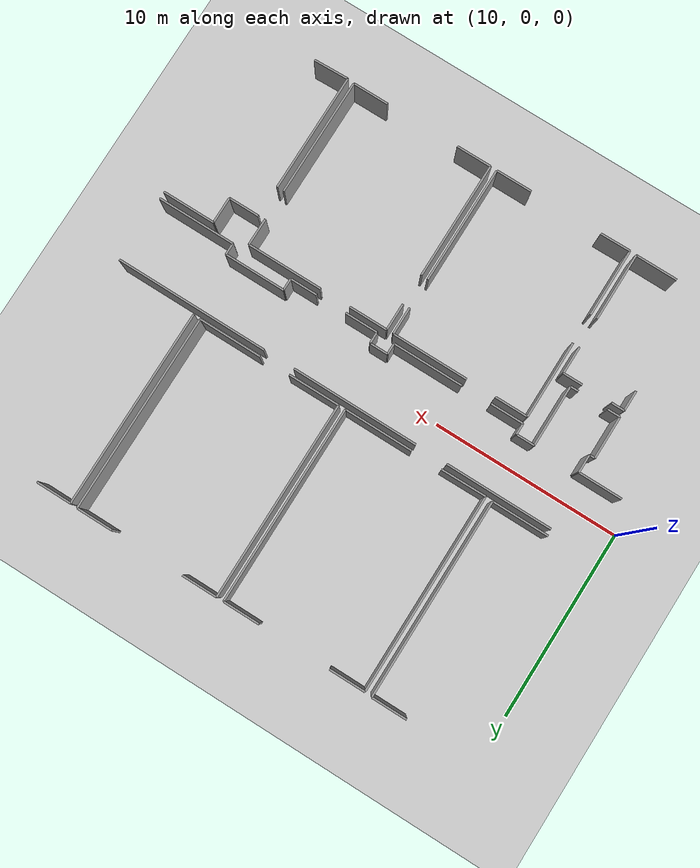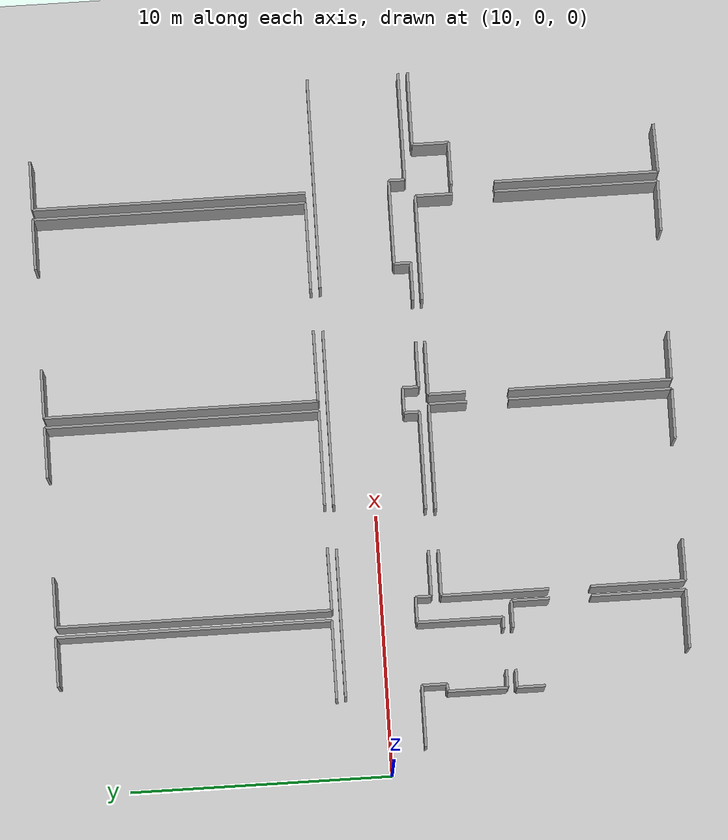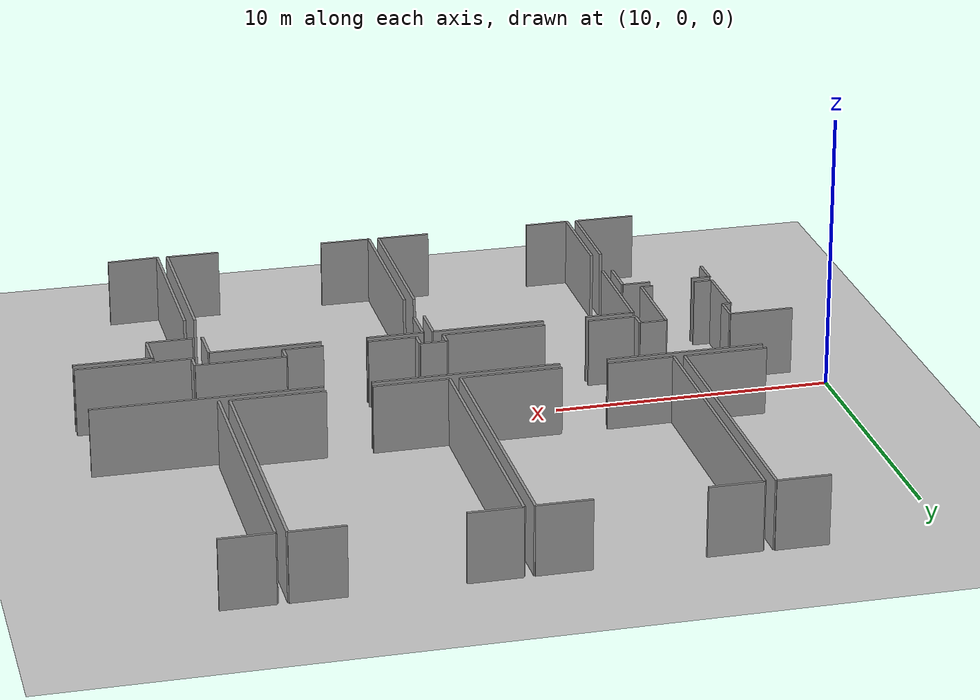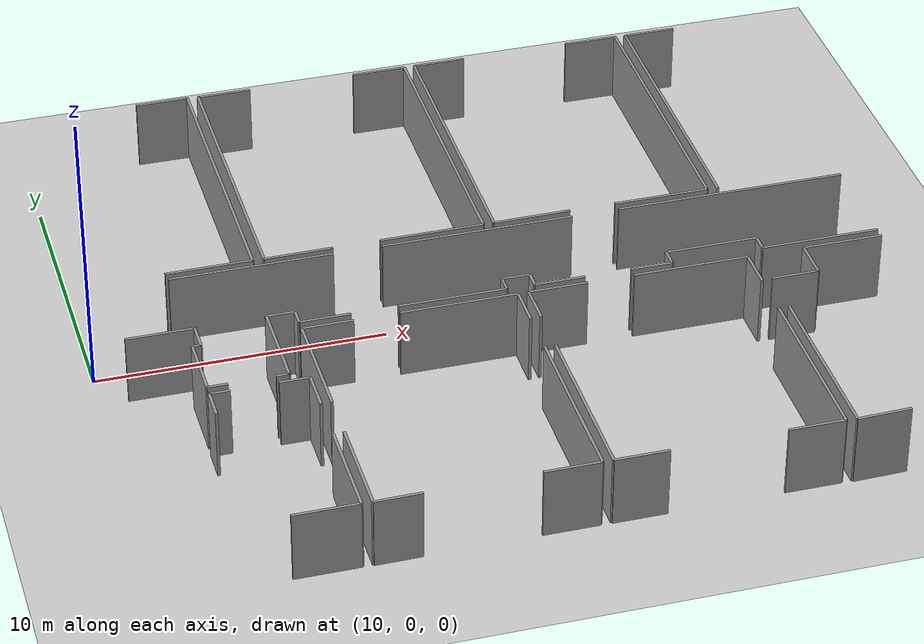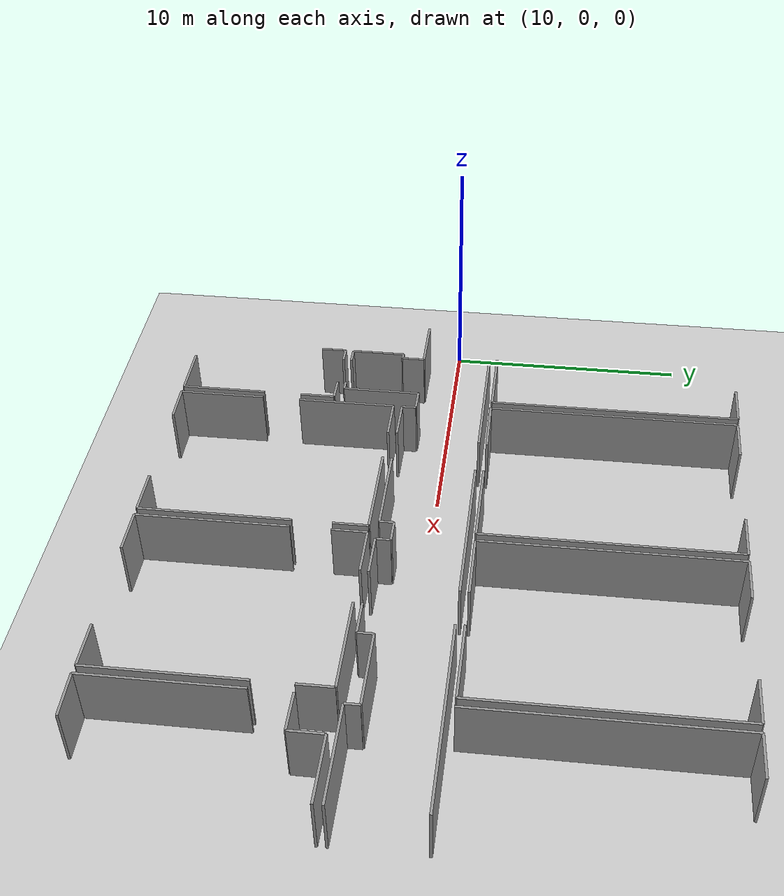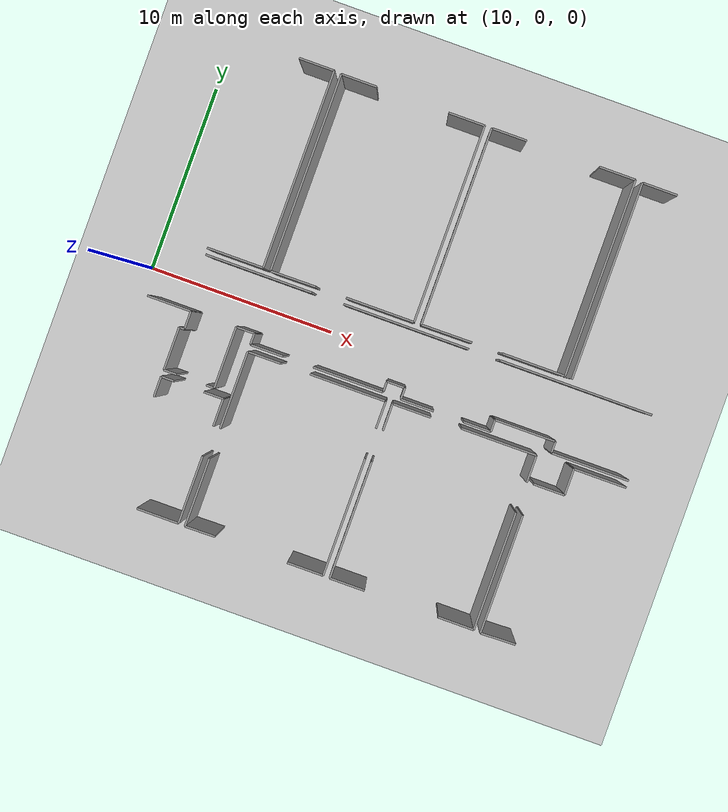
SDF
<sdf version="1.6">
 <world name="default">
  <model name="ground_plane">
   <static>1</static>
   <link name="link">
    <collision name="collision">
     <geometry><plane><normal>0 0 1</normal><size>100 100</size></plane></geometry>
     <surface><friction><ode><mu>100</mu><mu2>50</mu2></ode></friction></surface>
    </collision>
    <visual name="visual">
     <cast_shadows>0</cast_shadows>
     <geometry><plane><normal>0 0 1</normal><size>100 100</size></plane></geometry>
     <material>
      <script><uri>file://media/materials/scripts/gazebo.material</uri><name>Gazebo/Grey</name></script>
     </material>
    </visual>
   </link>
  </model>
  <model name="0510034692_Layout1">
   <static>1</static>
   <link name="Wall_224">
    <collision name="Wall_224_Collision">
     <geometry><box><size>1.8631144452 0.1 2.5</size></box></geometry>
     <pose>0.931557222598 0 1.25 0 0 0</pose>
    </collision>
    <visual name="Wall_224_Visual">
     <pose>0.931557222598 0 1.25 0 0 0</pose>
     <geometry><box><size>1.8631144452 0.1 2.5</size></box></geometry>
     <material>
      <script><uri>file://media/materials/scripts/gazebo.material</uri><name>Gazebo/Grey</name></script>
      <ambient>1 1 1 1</ambient>
     </material>
    </visual>
    <pose>70.4416633147 -0.0 0 0 0 0.0</pose>
   </link>
   <link name="Wall_225">
    <collision name="Wall_225_Collision">
     <geometry><box><size>10.489551307 0.1 2.5</size></box></geometry>
     <pose>5.24477565351 0 1.25 0 0 0</pose>
    </collision>
    <visual name="Wall_225_Visual">
     <pose>5.24477565351 0 1.25 0 0 0</pose>
     <geometry><box><size>10.489551307 0.1 2.5</size></box></geometry>
     <material>
      <script><uri>file://media/materials/scripts/gazebo.material</uri><name>Gazebo/Grey</name></script>
      <ambient>1 1 1 1</ambient>
     </material>
    </visual>
    <pose>72.3047777599 -0.0 0 0 0 -1.57079632679</pose>
   </link>
   <link name="Wall_226">
    <collision name="Wall_226_Collision">
     <geometry><box><size>2.98608405903 0.1 2.5</size></box></geometry>
     <pose>1.49304202952 0 1.25 0 0 0</pose>
    </collision>
    <visual name="Wall_226_Visual">
     <pose>1.49304202952 0 1.25 0 0 0</pose>
     <geometry><box><size>2.98608405903 0.1 2.5</size></box></geometry>
     <material>
      <script><uri>file://media/materials/scripts/gazebo.material</uri><name>Gazebo/Grey</name></script>
      <ambient>1 1 1 1</ambient>
     </material>
    </visual>
    <pose>72.3047777599 -10.489551307 0 0 0 3.14159265359</pose>
   </link>
   <link name="Wall_228">
    <collision name="Wall_228_Collision">
     <geometry><box><size>10.4710254806 0.1 2.5</size></box></geometry>
     <pose>5.23551274031 0 1.25 0 0 0</pose>
    </collision>
    <visual name="Wall_228_Visual">
     <pose>5.23551274031 0 1.25 0 0 0</pose>
     <geometry><box><size>10.4710254806 0.1 2.5</size></box></geometry>
     <material>
      <script><uri>file://media/materials/scripts/gazebo.material</uri><name>Gazebo/Grey</name></script>
      <ambient>1 1 1 1</ambient>
     </material>
    </visual>
    <pose>72.6935663358 -10.5116300316 0 0 0 1.57079632679</pose>
   </link>
   <link name="Wall_229">
    <collision name="Wall_229_Collision">
     <geometry><box><size>1.897882092 0.1 2.5</size></box></geometry>
     <pose>0.948941045999 0 1.25 0 0 0</pose>
    </collision>
    <visual name="Wall_229_Visual">
     <pose>0.948941045999 0 1.25 0 0 0</pose>
     <geometry><box><size>1.897882092 0.1 2.5</size></box></geometry>
     <material>
      <script><uri>file://media/materials/scripts/gazebo.material</uri><name>Gazebo/Grey</name></script>
      <ambient>1 1 1 1</ambient>
     </material>
    </visual>
    <pose>72.6935663358 -0.0406045510088 0 0 0 0.0</pose>
   </link>
   <link name="Wall_230">
    <collision name="Wall_230_Collision">
     <geometry><box><size>1.91983392739 0.1 2.5</size></box></geometry>
     <pose>0.959916963693 0 1.25 0 0 0</pose>
    </collision>
    <visual name="Wall_230_Visual">
     <pose>0.959916963693 0 1.25 0 0 0</pose>
     <geometry><box><size>1.91983392739 0.1 2.5</size></box></geometry>
     <material>
      <script><uri>file://media/materials/scripts/gazebo.material</uri><name>Gazebo/Grey</name></script>
      <ambient>1 1 1 1</ambient>
     </material>
    </visual>
    <pose>78.4091644472 -0.0406045510088 0 0 0 0.0</pose>
   </link>
   <link name="Wall_231">
    <collision name="Wall_231_Collision">
     <geometry><box><size>10.448946756 0.1 2.5</size></box></geometry>
     <pose>5.22447337801 0 1.25 0 0 0</pose>
    </collision>
    <visual name="Wall_231_Visual">
     <pose>5.22447337801 0 1.25 0 0 0</pose>
     <geometry><box><size>10.448946756 0.1 2.5</size></box></geometry>
     <material>
      <script><uri>file://media/materials/scripts/gazebo.material</uri><name>Gazebo/Grey</name></script>
      <ambient>1 1 1 1</ambient>
     </material>
    </visual>
    <pose>80.3289983745 -0.0406045510088 0 0 0 -1.57079632679</pose>
   </link>
   <link name="Wall_232">
    <collision name="Wall_232_Collision">
     <geometry><box><size>3.61900749788 0.1 2.5</size></box></geometry>
     <pose>1.80950374894 0 1.25 0 0 0</pose>
    </collision>
    <visual name="Wall_232_Visual">
     <pose>1.80950374894 0 1.25 0 0 0</pose>
     <geometry><box><size>3.61900749788 0.1 2.5</size></box></geometry>
     <material>
      <script><uri>file://media/materials/scripts/gazebo.material</uri><name>Gazebo/Grey</name></script>
      <ambient>1 1 1 1</ambient>
     </material>
    </visual>
    <pose>80.3289983745 -10.489551307 0 0 0 3.14159265359</pose>
   </link>
   <link name="Wall_233">
    <collision name="Wall_233_Collision">
     <geometry><box><size>2.38460447212 0.1 2.5</size></box></geometry>
     <pose>1.19230223606 0 1.25 0 0 0</pose>
    </collision>
    <visual name="Wall_233_Visual">
     <pose>1.19230223606 0 1.25 0 0 0</pose>
     <geometry><box><size>2.38460447212 0.1 2.5</size></box></geometry>
     <material>
      <script><uri>file://media/materials/scripts/gazebo.material</uri><name>Gazebo/Grey</name></script>
      <ambient>1 1 1 1</ambient>
     </material>
    </visual>
    <pose>75.0780685938 -10.489551307 0 0 0 -3.13233365893</pose>
   </link>
   <link name="Wall_234">
    <collision name="Wall_234_Collision">
     <geometry><box><size>10.4480585315 0.1 2.5</size></box></geometry>
     <pose>5.22402926573 0 1.25 0 0 0</pose>
    </collision>
    <visual name="Wall_234_Visual">
     <pose>5.22402926573 0 1.25 0 0 0</pose>
     <geometry><box><size>10.4480585315 0.1 2.5</size></box></geometry>
     <material>
      <script><uri>file://media/materials/scripts/gazebo.material</uri><name>Gazebo/Grey</name></script>
      <ambient>1 1 1 1</ambient>
     </material>
    </visual>
    <pose>80.7034484684 -10.486125298 0 0 0 1.57079632679</pose>
   </link>
   <link name="Wall_235">
    <collision name="Wall_235_Collision">
     <geometry><box><size>1.86780934641 0.1 2.5</size></box></geometry>
     <pose>0.933904673203 0 1.25 0 0 0</pose>
    </collision>
    <visual name="Wall_235_Visual">
     <pose>0.933904673203 0 1.25 0 0 0</pose>
     <geometry><box><size>1.86780934641 0.1 2.5</size></box></geometry>
     <material>
      <script><uri>file://media/materials/scripts/gazebo.material</uri><name>Gazebo/Grey</name></script>
      <ambient>1 1 1 1</ambient>
     </material>
    </visual>
    <pose>80.7034484684 -0.0380667665708 0 0 0 0.0</pose>
   </link>
   <link name="Wall_236">
    <collision name="Wall_236_Collision">
     <geometry><box><size>1.91158612796 0.1 2.5</size></box></geometry>
     <pose>0.955793063981 0 1.25 0 0 0</pose>
    </collision>
    <visual name="Wall_236_Visual">
     <pose>0.955793063981 0 1.25 0 0 0</pose>
     <geometry><box><size>1.91158612796 0.1 2.5</size></box></geometry>
     <material>
      <script><uri>file://media/materials/scripts/gazebo.material</uri><name>Gazebo/Grey</name></script>
      <ambient>1 1 1 1</ambient>
     </material>
    </visual>
    <pose>86.4382068523 -0.0380667665708 0 0 0 0.0</pose>
   </link>
   <link name="Wall_237">
    <collision name="Wall_237_Collision">
     <geometry><box><size>10.4334662709 0.1 2.5</size></box></geometry>
     <pose>5.21673313547 0 1.25 0 0 0</pose>
    </collision>
    <visual name="Wall_237_Visual">
     <pose>5.21673313547 0 1.25 0 0 0</pose>
     <geometry><box><size>10.4334662709 0.1 2.5</size></box></geometry>
     <material>
      <script><uri>file://media/materials/scripts/gazebo.material</uri><name>Gazebo/Grey</name></script>
      <ambient>1 1 1 1</ambient>
     </material>
    </visual>
    <pose>88.3497929802 -0.0380667665708 0 0 0 -1.57079632679</pose>
   </link>
   <link name="Wall_238">
    <collision name="Wall_238_Collision">
     <geometry><box><size>3.32703539829 0.1 2.5</size></box></geometry>
     <pose>1.66351769914 0 1.25 0 0 0</pose>
    </collision>
    <visual name="Wall_238_Visual">
     <pose>1.66351769914 0 1.25 0 0 0</pose>
     <geometry><box><size>3.32703539829 0.1 2.5</size></box></geometry>
     <material>
      <script><uri>file://media/materials/scripts/gazebo.material</uri><name>Gazebo/Grey</name></script>
      <ambient>1 1 1 1</ambient>
     </material>
    </visual>
    <pose>88.3497929802 -10.4715330375 0 0 0 3.14159265359</pose>
   </link>
   <link name="Wall_239">
    <collision name="Wall_239_Collision">
     <geometry><box><size>2.70861663781 0.1 2.5</size></box></geometry>
     <pose>1.35430831891 0 1.25 0 0 0</pose>
    </collision>
    <visual name="Wall_239_Visual">
     <pose>1.35430831891 0 1.25 0 0 0</pose>
     <geometry><box><size>2.70861663781 0.1 2.5</size></box></geometry>
     <material>
      <script><uri>file://media/materials/scripts/gazebo.material</uri><name>Gazebo/Grey</name></script>
      <ambient>1 1 1 1</ambient>
     </material>
    </visual>
    <pose>83.4120257991 -10.4715330375 0 0 0 -3.1362052795</pose>
   </link>
   <link name="Wall_240">
    <collision name="Wall_240_Collision">
     <geometry><box><size>10.4418409596 0.1 2.5</size></box></geometry>
     <pose>5.22092047979 0 1.25 0 0 0</pose>
    </collision>
    <visual name="Wall_240_Visual">
     <pose>5.22092047979 0 1.25 0 0 0</pose>
     <geometry><box><size>10.4418409596 0.1 2.5</size></box></geometry>
     <material>
      <script><uri>file://media/materials/scripts/gazebo.material</uri><name>Gazebo/Grey</name></script>
      <ambient>1 1 1 1</ambient>
     </material>
    </visual>
    <pose>88.7285573076 -10.5000831124 0 0 0 1.57079632679</pose>
   </link>
   <link name="Wall_241">
    <collision name="Wall_241_Collision">
     <geometry><box><size>1.85524731344 0.1 2.5</size></box></geometry>
     <pose>0.927623656719 0 1.25 0 0 0</pose>
    </collision>
    <visual name="Wall_241_Visual">
     <pose>0.927623656719 0 1.25 0 0 0</pose>
     <geometry><box><size>1.85524731344 0.1 2.5</size></box></geometry>
     <material>
      <script><uri>file://media/materials/scripts/gazebo.material</uri><name>Gazebo/Grey</name></script>
      <ambient>1 1 1 1</ambient>
     </material>
    </visual>
    <pose>88.7285573076 -0.0582421528533 0 0 0 0.0</pose>
   </link>
   <link name="Wall_289">
    <collision name="Wall_289_Collision">
     <geometry><box><size>6.27200734942 0.1 2.5</size></box></geometry>
     <pose>3.13600367471 0 1.25 0 0 0</pose>
    </collision>
    <visual name="Wall_289_Visual">
     <pose>3.13600367471 0 1.25 0 0 0</pose>
     <geometry><box><size>6.27200734942 0.1 2.5</size></box></geometry>
     <material>
      <script><uri>file://media/materials/scripts/gazebo.material</uri><name>Gazebo/Grey</name></script>
      <ambient>1 1 1 1</ambient>
     </material>
    </visual>
    <pose>88.7170103884 -24.0029996612 0 0 0 1.57079632679</pose>
   </link>
   <link name="Wall_290">
    <collision name="Wall_290_Collision">
     <geometry><box><size>1.62304003736 0.1 2.5</size></box></geometry>
     <pose>0.811520018678 0 1.25 0 0 0</pose>
    </collision>
    <visual name="Wall_290_Visual">
     <pose>0.811520018678 0 1.25 0 0 0</pose>
     <geometry><box><size>1.62304003736 0.1 2.5</size></box></geometry>
     <material>
      <script><uri>file://media/materials/scripts/gazebo.material</uri><name>Gazebo/Grey</name></script>
      <ambient>1 1 1 1</ambient>
     </material>
    </visual>
    <pose>88.7170103884 -16.0832088762 0 0 0 0.0</pose>
   </link>
   <link name="Wall_291">
    <collision name="Wall_291_Collision">
     <geometry><box><size>1.39578144093 0.1 2.5</size></box></geometry>
     <pose>0.697890720464 0 1.25 0 0 0</pose>
    </collision>
    <visual name="Wall_291_Visual">
     <pose>0.697890720464 0 1.25 0 0 0</pose>
     <geometry><box><size>1.39578144093 0.1 2.5</size></box></geometry>
     <material>
      <script><uri>file://media/materials/scripts/gazebo.material</uri><name>Gazebo/Grey</name></script>
      <ambient>1 1 1 1</ambient>
     </material>
    </visual>
    <pose>90.3400504258 -16.0832088762 0 0 0 1.57079632679</pose>
   </link>
   <link name="Wall_292">
    <collision name="Wall_292_Collision">
     <geometry><box><size>2.79156288186 0.1 2.5</size></box></geometry>
     <pose>1.39578144093 0 1.25 0 0 0</pose>
    </collision>
    <visual name="Wall_292_Visual">
     <pose>1.39578144093 0 1.25 0 0 0</pose>
     <geometry><box><size>2.79156288186 0.1 2.5</size></box></geometry>
     <material>
      <script><uri>file://media/materials/scripts/gazebo.material</uri><name>Gazebo/Grey</name></script>
      <ambient>1 1 1 1</ambient>
     </material>
    </visual>
    <pose>90.3400504258 -14.6874274352 0 0 0 0.0</pose>
   </link>
   <link name="Wall_297">
    <collision name="Wall_297_Collision">
     <geometry><box><size>1.85154438197 0.1 2.5</size></box></geometry>
     <pose>0.925772190983 0 1.25 0 0 0</pose>
    </collision>
    <visual name="Wall_297_Visual">
     <pose>0.925772190983 0 1.25 0 0 0</pose>
     <geometry><box><size>1.85154438197 0.1 2.5</size></box></geometry>
     <material>
      <script><uri>file://media/materials/scripts/gazebo.material</uri><name>Gazebo/Grey</name></script>
      <ambient>1 1 1 1</ambient>
     </material>
    </visual>
    <pose>90.5676896899 -23.9464070682 0 0 0 -3.11102281745</pose>
   </link>
   <link name="Wall_298">
    <collision name="Wall_298_Collision">
     <geometry><box><size>6.20704006781 0.1 2.5</size></box></geometry>
     <pose>3.1035200339 0 1.25 0 0 0</pose>
    </collision>
    <visual name="Wall_298_Visual">
     <pose>3.1035200339 0 1.25 0 0 0</pose>
     <geometry><box><size>6.20704006781 0.1 2.5</size></box></geometry>
     <material>
      <script><uri>file://media/materials/scripts/gazebo.material</uri><name>Gazebo/Grey</name></script>
      <ambient>1 1 1 1</ambient>
     </material>
    </visual>
    <pose>80.6954544474 -23.9651866731 0 0 0 1.57079632679</pose>
   </link>
   <link name="Wall_299">
    <collision name="Wall_299_Collision">
     <geometry><box><size>1.4338482075 0.1 2.5</size></box></geometry>
     <pose>0.71692410375 0 1.25 0 0 0</pose>
    </collision>
    <visual name="Wall_299_Visual">
     <pose>0.71692410375 0 1.25 0 0 0</pose>
     <geometry><box><size>1.4338482075 0.1 2.5</size></box></geometry>
     <material>
      <script><uri>file://media/materials/scripts/gazebo.material</uri><name>Gazebo/Grey</name></script>
      <ambient>1 1 1 1</ambient>
     </material>
    </visual>
    <pose>80.6954544474 -16.1212756427 0 0 0 1.57079632679</pose>
   </link>
   <link name="Wall_300">
    <collision name="Wall_300_Collision">
     <geometry><box><size>2.04393158641 0.1 2.5</size></box></geometry>
     <pose>1.0219657932 0 1.25 0 0 0</pose>
    </collision>
    <visual name="Wall_300_Visual">
     <pose>1.0219657932 0 1.25 0 0 0</pose>
     <geometry><box><size>2.04393158641 0.1 2.5</size></box></geometry>
     <material>
      <script><uri>file://media/materials/scripts/gazebo.material</uri><name>Gazebo/Grey</name></script>
      <ambient>1 1 1 1</ambient>
     </material>
    </visual>
    <pose>80.6954544474 -14.6874274352 0 0 0 0.0</pose>
   </link>
   <link name="Wall_301">
    <collision name="Wall_301_Collision">
     <geometry><box><size>3.99256936717 0.1 2.5</size></box></geometry>
     <pose>1.99628468358 0 1.25 0 0 0</pose>
    </collision>
    <visual name="Wall_301_Visual">
     <pose>1.99628468358 0 1.25 0 0 0</pose>
     <geometry><box><size>3.99256936717 0.1 2.5</size></box></geometry>
     <material>
      <script><uri>file://media/materials/scripts/gazebo.material</uri><name>Gazebo/Grey</name></script>
      <ambient>1 1 1 1</ambient>
     </material>
    </visual>
    <pose>84.3581118376 -14.6874274352 0 0 0 0.0</pose>
   </link>
   <link name="Wall_302">
    <collision name="Wall_302_Collision">
     <geometry><box><size>1.43562465661 0.1 2.5</size></box></geometry>
     <pose>0.717812328303 0 1.25 0 0 0</pose>
    </collision>
    <visual name="Wall_302_Visual">
     <pose>0.717812328303 0 1.25 0 0 0</pose>
     <geometry><box><size>1.43562465661 0.1 2.5</size></box></geometry>
     <material>
      <script><uri>file://media/materials/scripts/gazebo.material</uri><name>Gazebo/Grey</name></script>
      <ambient>1 1 1 1</ambient>
     </material>
    </visual>
    <pose>88.3506812048 -14.6874274352 0 0 0 -1.57079632679</pose>
   </link>
   <link name="Wall_303">
    <collision name="Wall_303_Collision">
     <geometry><box><size>6.2423152715 0.1 2.5</size></box></geometry>
     <pose>3.12115763575 0 1.25 0 0 0</pose>
    </collision>
    <visual name="Wall_303_Visual">
     <pose>3.12115763575 0 1.25 0 0 0</pose>
     <geometry><box><size>6.2423152715 0.1 2.5</size></box></geometry>
     <material>
      <script><uri>file://media/materials/scripts/gazebo.material</uri><name>Gazebo/Grey</name></script>
      <ambient>1 1 1 1</ambient>
     </material>
    </visual>
    <pose>88.3506812048 -17.7221100662 0 0 0 -1.57079632679</pose>
   </link>
   <link name="Wall_304">
    <collision name="Wall_304_Collision">
     <geometry><box><size>1.91095168185 0.1 2.5</size></box></geometry>
     <pose>0.955475840927 0 1.25 0 0 0</pose>
    </collision>
    <visual name="Wall_304_Visual">
     <pose>0.955475840927 0 1.25 0 0 0</pose>
     <geometry><box><size>1.91095168185 0.1 2.5</size></box></geometry>
     <material>
      <script><uri>file://media/materials/scripts/gazebo.material</uri><name>Gazebo/Grey</name></script>
      <ambient>1 1 1 1</ambient>
     </material>
    </visual>
    <pose>88.3506812048 -23.9644253377 0 0 0 3.14159265359</pose>
   </link>
   <link name="Wall_305">
    <collision name="Wall_305_Collision">
     <geometry><box><size>1.84611144645 0.1 2.5</size></box></geometry>
     <pose>0.923055723224 0 1.25 0 0 0</pose>
    </collision>
    <visual name="Wall_305_Visual">
     <pose>0.923055723224 0 1.25 0 0 0</pose>
     <geometry><box><size>1.84611144645 0.1 2.5</size></box></geometry>
     <material>
      <script><uri>file://media/materials/scripts/gazebo.material</uri><name>Gazebo/Grey</name></script>
      <ambient>1 1 1 1</ambient>
     </material>
    </visual>
    <pose>82.5415657369 -23.9644253377 0 0 0 -3.14118025414</pose>
   </link>
   <link name="Wall_306">
    <collision name="Wall_306_Collision">
     <geometry><box><size>3.60555724036 0.1 2.5</size></box></geometry>
     <pose>1.80277862018 0 1.25 0 0 0</pose>
    </collision>
    <visual name="Wall_306_Visual">
     <pose>1.80277862018 0 1.25 0 0 0</pose>
     <geometry><box><size>3.60555724036 0.1 2.5</size></box></geometry>
     <material>
      <script><uri>file://media/materials/scripts/gazebo.material</uri><name>Gazebo/Grey</name></script>
      <ambient>1 1 1 1</ambient>
     </material>
    </visual>
    <pose>72.9942937917 -23.9757184785 0 0 0 1.57079632679</pose>
   </link>
   <link name="Wall_307">
    <collision name="Wall_307_Collision">
     <geometry><box><size>4.09255807402 0.1 2.5</size></box></geometry>
     <pose>2.04627903701 0 1.25 0 0 0</pose>
    </collision>
    <visual name="Wall_307_Visual">
     <pose>2.04627903701 0 1.25 0 0 0</pose>
     <geometry><box><size>4.09255807402 0.1 2.5</size></box></geometry>
     <material>
      <script><uri>file://media/materials/scripts/gazebo.material</uri><name>Gazebo/Grey</name></script>
      <ambient>1 1 1 1</ambient>
     </material>
    </visual>
    <pose>72.9942937917 -18.7841728536 0 0 0 1.57079632679</pose>
   </link>
   <link name="Wall_308">
    <collision name="Wall_308_Collision">
     <geometry><box><size>1.7449805796 0.1 2.5</size></box></geometry>
     <pose>0.872490289802 0 1.25 0 0 0</pose>
    </collision>
    <visual name="Wall_308_Visual">
     <pose>0.872490289802 0 1.25 0 0 0</pose>
     <geometry><box><size>1.7449805796 0.1 2.5</size></box></geometry>
     <material>
      <script><uri>file://media/materials/scripts/gazebo.material</uri><name>Gazebo/Grey</name></script>
      <ambient>1 1 1 1</ambient>
     </material>
    </visual>
    <pose>72.9942937917 -14.6916147795 0 0 0 0.0</pose>
   </link>
   <link name="Wall_309">
    <collision name="Wall_309_Collision">
     <geometry><box><size>4.03127057985 0.1 2.5</size></box></geometry>
     <pose>2.01563528992 0 1.25 0 0 0</pose>
    </collision>
    <visual name="Wall_309_Visual">
     <pose>2.01563528992 0 1.25 0 0 0</pose>
     <geometry><box><size>4.03127057985 0.1 2.5</size></box></geometry>
     <material>
      <script><uri>file://media/materials/scripts/gazebo.material</uri><name>Gazebo/Grey</name></script>
      <ambient>1 1 1 1</ambient>
     </material>
    </visual>
    <pose>76.3038184774 -14.6916147795 0 0 0 0.0</pose>
   </link>
   <link name="Wall_310">
    <collision name="Wall_310_Collision">
     <geometry><box><size>1.44767913269 0.1 2.5</size></box></geometry>
     <pose>0.723839566343 0 1.25 0 0 0</pose>
    </collision>
    <visual name="Wall_310_Visual">
     <pose>0.723839566343 0 1.25 0 0 0</pose>
     <geometry><box><size>1.44767913269 0.1 2.5</size></box></geometry>
     <material>
      <script><uri>file://media/materials/scripts/gazebo.material</uri><name>Gazebo/Grey</name></script>
      <ambient>1 1 1 1</ambient>
     </material>
    </visual>
    <pose>80.3350890572 -14.6916147795 0 0 0 -1.57079632679</pose>
   </link>
   <link name="Wall_311">
    <collision name="Wall_311_Collision">
     <geometry><box><size>6.2156685349 0.1 2.5</size></box></geometry>
     <pose>3.10783426745 0 1.25 0 0 0</pose>
    </collision>
    <visual name="Wall_311_Visual">
     <pose>3.10783426745 0 1.25 0 0 0</pose>
     <geometry><box><size>6.2156685349 0.1 2.5</size></box></geometry>
     <material>
      <script><uri>file://media/materials/scripts/gazebo.material</uri><name>Gazebo/Grey</name></script>
      <ambient>1 1 1 1</ambient>
     </material>
    </visual>
    <pose>80.3350890572 -17.7412703388 0 0 0 -1.57079632679</pose>
   </link>
   <link name="Wall_312">
    <collision name="Wall_312_Collision">
     <geometry><box><size>1.9089214543 0.1 2.5</size></box></geometry>
     <pose>0.954460727151 0 1.25 0 0 0</pose>
    </collision>
    <visual name="Wall_312_Visual">
     <pose>0.954460727151 0 1.25 0 0 0</pose>
     <geometry><box><size>1.9089214543 0.1 2.5</size></box></geometry>
     <material>
      <script><uri>file://media/materials/scripts/gazebo.material</uri><name>Gazebo/Grey</name></script>
      <ambient>1 1 1 1</ambient>
     </material>
    </visual>
    <pose>80.3350890572 -23.9569388737 0 0 0 3.14159265359</pose>
   </link>
   <link name="Wall_313">
    <collision name="Wall_313_Collision">
     <geometry><box><size>1.59599623466 0.1 2.5</size></box></geometry>
     <pose>0.797998117329 0 1.25 0 0 0</pose>
    </collision>
    <visual name="Wall_313_Visual">
     <pose>0.797998117329 0 1.25 0 0 0</pose>
     <geometry><box><size>1.59599623466 0.1 2.5</size></box></geometry>
     <material>
      <script><uri>file://media/materials/scripts/gazebo.material</uri><name>Gazebo/Grey</name></script>
      <ambient>1 1 1 1</ambient>
     </material>
    </visual>
    <pose>74.5901795356 -23.9569388737 0 0 0 -3.12982568459</pose>
   </link>
   <link name="Wall_317">
    <collision name="Wall_317_Collision">
     <geometry><box><size>1.07602060173 0.1 2.5</size></box></geometry>
     <pose>0.538010300867 0 1.25 0 0 0</pose>
    </collision>
    <visual name="Wall_317_Visual">
     <pose>0.538010300867 0 1.25 0 0 0</pose>
     <geometry><box><size>1.07602060173 0.1 2.5</size></box></geometry>
     <material>
      <script><uri>file://media/materials/scripts/gazebo.material</uri><name>Gazebo/Grey</name></script>
      <ambient>1 1 1 1</ambient>
     </material>
    </visual>
    <pose>69.339376644 -18.4065505292 0 0 0 1.57079632679</pose>
   </link>
   <link name="Wall_318">
    <collision name="Wall_318_Collision">
     <geometry><box><size>0.684059795277 0.1 2.5</size></box></geometry>
     <pose>0.342029897638 0 1.25 0 0 0</pose>
    </collision>
    <visual name="Wall_318_Visual">
     <pose>0.342029897638 0 1.25 0 0 0</pose>
     <geometry><box><size>0.684059795277 0.1 2.5</size></box></geometry>
     <material>
      <script><uri>file://media/materials/scripts/gazebo.material</uri><name>Gazebo/Grey</name></script>
      <ambient>1 1 1 1</ambient>
     </material>
    </visual>
    <pose>69.339376644 -17.3305299275 0 0 0 0.0</pose>
   </link>
   <link name="Wall_319">
    <collision name="Wall_319_Collision">
     <geometry><box><size>1.02615313753 0.1 2.5</size></box></geometry>
     <pose>0.513076568763 0 1.25 0 0 0</pose>
    </collision>
    <visual name="Wall_319_Visual">
     <pose>0.513076568763 0 1.25 0 0 0</pose>
     <geometry><box><size>1.02615313753 0.1 2.5</size></box></geometry>
     <material>
      <script><uri>file://media/materials/scripts/gazebo.material</uri><name>Gazebo/Grey</name></script>
      <ambient>1 1 1 1</ambient>
     </material>
    </visual>
    <pose>71.6123432759 -17.3305299275 0 0 0 0.0</pose>
   </link>
   <link name="Wall_320">
    <collision name="Wall_320_Collision">
     <geometry><box><size>1.45326225845 0.1 2.5</size></box></geometry>
     <pose>0.726631129225 0 1.25 0 0 0</pose>
    </collision>
    <visual name="Wall_320_Visual">
     <pose>0.726631129225 0 1.25 0 0 0</pose>
     <geometry><box><size>1.45326225845 0.1 2.5</size></box></geometry>
     <material>
      <script><uri>file://media/materials/scripts/gazebo.material</uri><name>Gazebo/Grey</name></script>
      <ambient>1 1 1 1</ambient>
     </material>
    </visual>
    <pose>72.6384964135 -17.3305299275 0 0 0 -1.57079632679</pose>
   </link>
   <link name="Wall_321">
    <collision name="Wall_321_Collision">
     <geometry><box><size>3.57992561754 0.1 2.5</size></box></geometry>
     <pose>1.78996280877 0 1.25 0 0 0</pose>
    </collision>
    <visual name="Wall_321_Visual">
     <pose>1.78996280877 0 1.25 0 0 0</pose>
     <geometry><box><size>3.57992561754 0.1 2.5</size></box></geometry>
     <material>
      <script><uri>file://media/materials/scripts/gazebo.material</uri><name>Gazebo/Grey</name></script>
      <ambient>1 1 1 1</ambient>
     </material>
    </visual>
    <pose>72.6384964135 -20.3728259118 0 0 0 -1.57079632679</pose>
   </link>
   <link name="Wall_322">
    <collision name="Wall_322_Collision">
     <geometry><box><size>2.21434381142 0.1 2.5</size></box></geometry>
     <pose>1.10717190571 0 1.25 0 0 0</pose>
    </collision>
    <visual name="Wall_322_Visual">
     <pose>1.10717190571 0 1.25 0 0 0</pose>
     <geometry><box><size>2.21434381142 0.1 2.5</size></box></geometry>
     <material>
      <script><uri>file://media/materials/scripts/gazebo.material</uri><name>Gazebo/Grey</name></script>
      <ambient>1 1 1 1</ambient>
     </material>
    </visual>
    <pose>72.6384964135 -23.9527515293 0 0 0 3.14159265359</pose>
   </link>
   <link name="Wall_331">
    <collision name="Wall_331_Collision">
     <geometry><box><size>5.63679990458 0.1 2.5</size></box></geometry>
     <pose>2.81839995229 0 1.25 0 0 0</pose>
    </collision>
    <visual name="Wall_331_Visual">
     <pose>2.81839995229 0 1.25 0 0 0</pose>
     <geometry><box><size>5.63679990458 0.1 2.5</size></box></geometry>
     <material>
      <script><uri>file://media/materials/scripts/gazebo.material</uri><name>Gazebo/Grey</name></script>
      <ambient>1 1 1 1</ambient>
     </material>
    </visual>
    <pose>69.3684342758 -10.8316446493 0 0 0 0.0</pose>
   </link>
   <link name="Wall_332">
    <collision name="Wall_332_Collision">
     <geometry><box><size>6.67691085651 0.1 2.5</size></box></geometry>
     <pose>3.33845542826 0 1.25 0 0 0</pose>
    </collision>
    <visual name="Wall_332_Visual">
     <pose>3.33845542826 0 1.25 0 0 0</pose>
     <geometry><box><size>6.67691085651 0.1 2.5</size></box></geometry>
     <material>
      <script><uri>file://media/materials/scripts/gazebo.material</uri><name>Gazebo/Grey</name></script>
      <ambient>1 1 1 1</ambient>
     </material>
    </visual>
    <pose>76.6989515144 -10.8316446493 0 0 0 0.0</pose>
   </link>
   <link name="Wall_333">
    <collision name="Wall_333_Collision">
     <geometry><box><size>8.071296516 0.1 2.5</size></box></geometry>
     <pose>4.035648258 0 1.25 0 0 0</pose>
    </collision>
    <visual name="Wall_333_Visual">
     <pose>4.035648258 0 1.25 0 0 0</pose>
     <geometry><box><size>8.071296516 0.1 2.5</size></box></geometry>
     <material>
      <script><uri>file://media/materials/scripts/gazebo.material</uri><name>Gazebo/Grey</name></script>
      <ambient>1 1 1 1</ambient>
     </material>
    </visual>
    <pose>85.0415371868 -10.8316446493 0 0 0 0.0</pose>
   </link>
   <link name="Wall_348">
    <collision name="Wall_348_Collision">
     <geometry><box><size>4.1161594693 0.1 2.5</size></box></geometry>
     <pose>2.05807973465 0 1.25 0 0 0</pose>
    </collision>
    <visual name="Wall_348_Visual">
     <pose>2.05807973465 0 1.25 0 0 0</pose>
     <geometry><box><size>4.1161594693 0.1 2.5</size></box></geometry>
     <material>
      <script><uri>file://media/materials/scripts/gazebo.material</uri><name>Gazebo/Grey</name></script>
      <ambient>1 1 1 1</ambient>
     </material>
    </visual>
    <pose>93.1264108495 -14.3194486917 0 0 0 3.14159265359</pose>
   </link>
   <link name="Wall_349">
    <collision name="Wall_349_Collision">
     <geometry><box><size>0.607926262135 0.1 2.5</size></box></geometry>
     <pose>0.303963131068 0 1.25 0 0 0</pose>
    </collision>
    <visual name="Wall_349_Visual">
     <pose>0.303963131068 0 1.25 0 0 0</pose>
     <geometry><box><size>0.607926262135 0.1 2.5</size></box></geometry>
     <material>
      <script><uri>file://media/materials/scripts/gazebo.material</uri><name>Gazebo/Grey</name></script>
      <ambient>1 1 1 1</ambient>
     </material>
    </visual>
    <pose>89.0102513802 -14.3194486917 0 0 0 1.57079632679</pose>
   </link>
   <link name="Wall_350">
    <collision name="Wall_350_Collision">
     <geometry><box><size>3.21423088001 0.1 2.5</size></box></geometry>
     <pose>1.60711544001 0 1.25 0 0 0</pose>
    </collision>
    <visual name="Wall_350_Visual">
     <pose>1.60711544001 0 1.25 0 0 0</pose>
     <geometry><box><size>3.21423088001 0.1 2.5</size></box></geometry>
     <material>
      <script><uri>file://media/materials/scripts/gazebo.material</uri><name>Gazebo/Grey</name></script>
      <ambient>1 1 1 1</ambient>
     </material>
    </visual>
    <pose>89.0102513802 -13.7115224296 0 0 0 3.14159265359</pose>
   </link>
   <link name="Wall_351">
    <collision name="Wall_351_Collision">
     <geometry><box><size>0.633177217294 0.1 2.5</size></box></geometry>
     <pose>0.316588608647 0 1.25 0 0 0</pose>
    </collision>
    <visual name="Wall_351_Visual">
     <pose>0.316588608647 0 1.25 0 0 0</pose>
     <geometry><box><size>0.633177217294 0.1 2.5</size></box></geometry>
     <material>
      <script><uri>file://media/materials/scripts/gazebo.material</uri><name>Gazebo/Grey</name></script>
      <ambient>1 1 1 1</ambient>
     </material>
    </visual>
    <pose>85.7960205002 -13.7115224296 0 0 0 -1.57079632679</pose>
   </link>
   <link name="Wall_352">
    <collision name="Wall_352_Collision">
     <geometry><box><size>1.43917755482 0.1 2.5</size></box></geometry>
     <pose>0.71958877741 0 1.25 0 0 0</pose>
    </collision>
    <visual name="Wall_352_Visual">
     <pose>0.71958877741 0 1.25 0 0 0</pose>
     <geometry><box><size>1.43917755482 0.1 2.5</size></box></geometry>
     <material>
      <script><uri>file://media/materials/scripts/gazebo.material</uri><name>Gazebo/Grey</name></script>
      <ambient>1 1 1 1</ambient>
     </material>
    </visual>
    <pose>85.7960205002 -14.3446996469 0 0 0 3.14159265359</pose>
   </link>
   <link name="Wall_353">
    <collision name="Wall_353_Collision">
     <geometry><box><size>1.73901678618 0.1 2.5</size></box></geometry>
     <pose>0.869508393088 0 1.25 0 0 0</pose>
    </collision>
    <visual name="Wall_353_Visual">
     <pose>0.869508393088 0 1.25 0 0 0</pose>
     <geometry><box><size>1.73901678618 0.1 2.5</size></box></geometry>
     <material>
      <script><uri>file://media/materials/scripts/gazebo.material</uri><name>Gazebo/Grey</name></script>
      <ambient>1 1 1 1</ambient>
     </material>
    </visual>
    <pose>82.752074956 -14.3446996469 0 0 0 3.14159265359</pose>
   </link>
   <link name="Wall_354">
    <collision name="Wall_354_Collision">
     <geometry><box><size>0.611098492683 0.1 2.5</size></box></geometry>
     <pose>0.305549246341 0 1.25 0 0 0</pose>
    </collision>
    <visual name="Wall_354_Visual">
     <pose>0.305549246341 0 1.25 0 0 0</pose>
     <geometry><box><size>0.611098492683 0.1 2.5</size></box></geometry>
     <material>
      <script><uri>file://media/materials/scripts/gazebo.material</uri><name>Gazebo/Grey</name></script>
      <ambient>1 1 1 1</ambient>
     </material>
    </visual>
    <pose>81.0130581698 -14.3446996469 0 0 0 1.57079632679</pose>
   </link>
   <link name="Wall_355">
    <collision name="Wall_355_Collision">
     <geometry><box><size>0.959916963693 0.1 2.5</size></box></geometry>
     <pose>0.479958481847 0 1.25 0 0 0</pose>
    </collision>
    <visual name="Wall_355_Visual">
     <pose>0.479958481847 0 1.25 0 0 0</pose>
     <geometry><box><size>0.959916963693 0.1 2.5</size></box></geometry>
     <material>
      <script><uri>file://media/materials/scripts/gazebo.material</uri><name>Gazebo/Grey</name></script>
      <ambient>1 1 1 1</ambient>
     </material>
    </visual>
    <pose>81.0130581698 -13.7336011542 0 0 0 3.14159265359</pose>
   </link>
   <link name="Wall_356">
    <collision name="Wall_356_Collision">
     <geometry><box><size>0.58153330398 0.1 2.5</size></box></geometry>
     <pose>0.29076665199 0 1.25 0 0 0</pose>
    </collision>
    <visual name="Wall_356_Visual">
     <pose>0.29076665199 0 1.25 0 0 0</pose>
     <geometry><box><size>0.58153330398 0.1 2.5</size></box></geometry>
     <material>
      <script><uri>file://media/materials/scripts/gazebo.material</uri><name>Gazebo/Grey</name></script>
      <ambient>1 1 1 1</ambient>
     </material>
    </visual>
    <pose>80.0531412061 -13.7336011542 0 0 0 -1.57079632679</pose>
   </link>
   <link name="Wall_357">
    <collision name="Wall_357_Collision">
     <geometry><box><size>3.71392063587 0.1 2.5</size></box></geometry>
     <pose>1.85696031793 0 1.25 0 0 0</pose>
    </collision>
    <visual name="Wall_357_Visual">
     <pose>1.85696031793 0 1.25 0 0 0</pose>
     <geometry><box><size>3.71392063587 0.1 2.5</size></box></geometry>
     <material>
      <script><uri>file://media/materials/scripts/gazebo.material</uri><name>Gazebo/Grey</name></script>
      <ambient>1 1 1 1</ambient>
     </material>
    </visual>
    <pose>80.0531412061 -14.3151344582 0 0 0 3.14159265359</pose>
   </link>
   <link name="Wall_358">
    <collision name="Wall_358_Collision">
     <geometry><box><size>1.74117390295 0.1 2.5</size></box></geometry>
     <pose>0.870586951474 0 1.25 0 0 0</pose>
    </collision>
    <visual name="Wall_358_Visual">
     <pose>0.870586951474 0 1.25 0 0 0</pose>
     <geometry><box><size>1.74117390295 0.1 2.5</size></box></geometry>
     <material>
      <script><uri>file://media/materials/scripts/gazebo.material</uri><name>Gazebo/Grey</name></script>
      <ambient>1 1 1 1</ambient>
     </material>
    </visual>
    <pose>74.7392743713 -14.3151344582 0 0 0 3.14159265359</pose>
   </link>
   <link name="Wall_359">
    <collision name="Wall_359_Collision">
     <geometry><box><size>0.594983561501 0.1 2.5</size></box></geometry>
     <pose>0.297491780751 0 1.25 0 0 0</pose>
    </collision>
    <visual name="Wall_359_Visual">
     <pose>0.297491780751 0 1.25 0 0 0</pose>
     <geometry><box><size>0.594983561501 0.1 2.5</size></box></geometry>
     <material>
      <script><uri>file://media/materials/scripts/gazebo.material</uri><name>Gazebo/Grey</name></script>
      <ambient>1 1 1 1</ambient>
     </material>
    </visual>
    <pose>72.9981004683 -14.3151344582 0 0 0 1.57079632679</pose>
   </link>
   <link name="Wall_360">
    <collision name="Wall_360_Collision">
     <geometry><box><size>0.965246311013 0.1 2.5</size></box></geometry>
     <pose>0.482623155507 0 1.25 0 0 0</pose>
    </collision>
    <visual name="Wall_360_Visual">
     <pose>0.482623155507 0 1.25 0 0 0</pose>
     <geometry><box><size>0.965246311013 0.1 2.5</size></box></geometry>
     <material>
      <script><uri>file://media/materials/scripts/gazebo.material</uri><name>Gazebo/Grey</name></script>
      <ambient>1 1 1 1</ambient>
     </material>
    </visual>
    <pose>72.9981004683 -13.7201508967 0 0 0 3.14159265359</pose>
   </link>
   <link name="Wall_361">
    <collision name="Wall_361_Collision">
     <geometry><box><size>3.2535665388 0.1 2.5</size></box></geometry>
     <pose>1.6267832694 0 1.25 0 0 0</pose>
    </collision>
    <visual name="Wall_361_Visual">
     <pose>1.6267832694 0 1.25 0 0 0</pose>
     <geometry><box><size>3.2535665388 0.1 2.5</size></box></geometry>
     <material>
      <script><uri>file://media/materials/scripts/gazebo.material</uri><name>Gazebo/Grey</name></script>
      <ambient>1 1 1 1</ambient>
     </material>
    </visual>
    <pose>72.0328541573 -13.7201508967 0 0 0 -1.57079632679</pose>
   </link>
   <link name="Wall_362">
    <collision name="Wall_362_Collision">
     <geometry><box><size>0.427236010146 0.1 2.5</size></box></geometry>
     <pose>0.213618005073 0 1.25 0 0 0</pose>
    </collision>
    <visual name="Wall_362_Visual">
     <pose>0.213618005073 0 1.25 0 0 0</pose>
     <geometry><box><size>0.427236010146 0.1 2.5</size></box></geometry>
     <material>
      <script><uri>file://media/materials/scripts/gazebo.material</uri><name>Gazebo/Grey</name></script>
      <ambient>1 1 1 1</ambient>
     </material>
    </visual>
    <pose>72.0328541573 -16.9737174355 0 0 0 3.14159265359</pose>
   </link>
   <link name="Wall_363">
    <collision name="Wall_363_Collision">
     <geometry><box><size>0.674669992856 0.1 2.5</size></box></geometry>
     <pose>0.337334996428 0 1.25 0 0 0</pose>
    </collision>
    <visual name="Wall_363_Visual">
     <pose>0.337334996428 0 1.25 0 0 0</pose>
     <geometry><box><size>0.674669992856 0.1 2.5</size></box></geometry>
     <material>
      <script><uri>file://media/materials/scripts/gazebo.material</uri><name>Gazebo/Grey</name></script>
      <ambient>1 1 1 1</ambient>
     </material>
    </visual>
    <pose>70.0267355591 -16.9737174355 0 0 0 3.14159265359</pose>
   </link>
   <link name="Wall_364">
    <collision name="Wall_364_Collision">
     <geometry><box><size>2.26725661696 0.1 2.5</size></box></geometry>
     <pose>1.13362830848 0 1.25 0 0 0</pose>
    </collision>
    <visual name="Wall_364_Visual">
     <pose>1.13362830848 0 1.25 0 0 0</pose>
     <geometry><box><size>2.26725661696 0.1 2.5</size></box></geometry>
     <material>
      <script><uri>file://media/materials/scripts/gazebo.material</uri><name>Gazebo/Grey</name></script>
      <ambient>1 1 1 1</ambient>
     </material>
    </visual>
    <pose>69.3520655662 -16.9737174355 0 0 0 1.57079632679</pose>
   </link>
   <link name="Wall_365">
    <collision name="Wall_365_Collision">
     <geometry><box><size>0.282962964843 0.1 2.5</size></box></geometry>
     <pose>0.141481482421 0 1.25 0 0 0</pose>
    </collision>
    <visual name="Wall_365_Visual">
     <pose>0.141481482421 0 1.25 0 0 0</pose>
     <geometry><box><size>0.282962964843 0.1 2.5</size></box></geometry>
     <material>
      <script><uri>file://media/materials/scripts/gazebo.material</uri><name>Gazebo/Grey</name></script>
      <ambient>1 1 1 1</ambient>
     </material>
    </visual>
    <pose>69.3520655662 -14.7064608185 0 0 0 0.0</pose>
   </link>
   <link name="Wall_366">
    <collision name="Wall_366_Collision">
     <geometry><box><size>0.957632957699 0.1 2.5</size></box></geometry>
     <pose>0.478816478849 0 1.25 0 0 0</pose>
    </collision>
    <visual name="Wall_366_Visual">
     <pose>0.478816478849 0 1.25 0 0 0</pose>
     <geometry><box><size>0.957632957699 0.1 2.5</size></box></geometry>
     <material>
      <script><uri>file://media/materials/scripts/gazebo.material</uri><name>Gazebo/Grey</name></script>
      <ambient>1 1 1 1</ambient>
     </material>
    </visual>
    <pose>69.635028531 -14.7064608185 0 0 0 1.57079632679</pose>
   </link>
   <link name="Wall_367">
    <collision name="Wall_367_Collision">
     <geometry><box><size>2.31433251828 0.1 2.5</size></box></geometry>
     <pose>1.15716625914 0 1.25 0 0 0</pose>
    </collision>
    <visual name="Wall_367_Visual">
     <pose>1.15716625914 0 1.25 0 0 0</pose>
     <geometry><box><size>2.31433251828 0.1 2.5</size></box></geometry>
     <material>
      <script><uri>file://media/materials/scripts/gazebo.material</uri><name>Gazebo/Grey</name></script>
      <ambient>1 1 1 1</ambient>
     </material>
    </visual>
    <pose>69.635028531 -13.7488278608 0 0 0 3.14159265359</pose>
   </link>
   <pose>-56.4 12.4296829419 0 0 0 0</pose>
  </model>
 </world>
</sdf>
